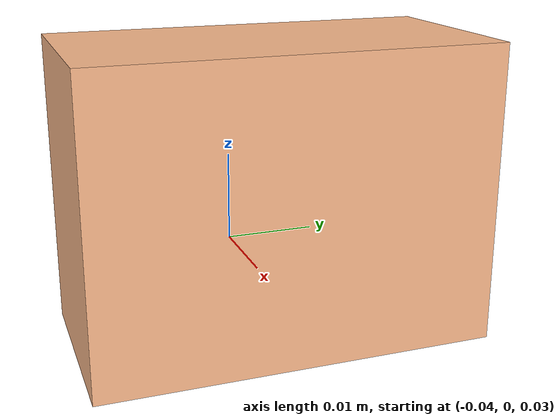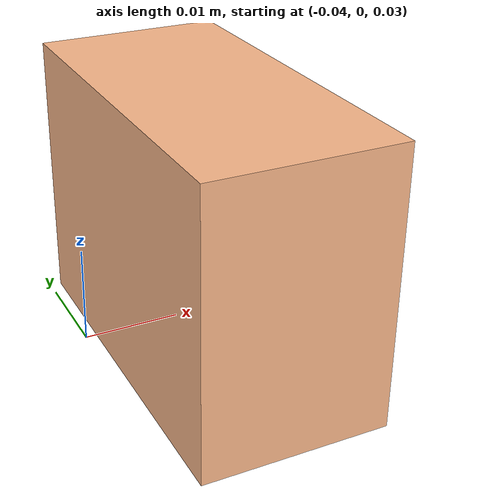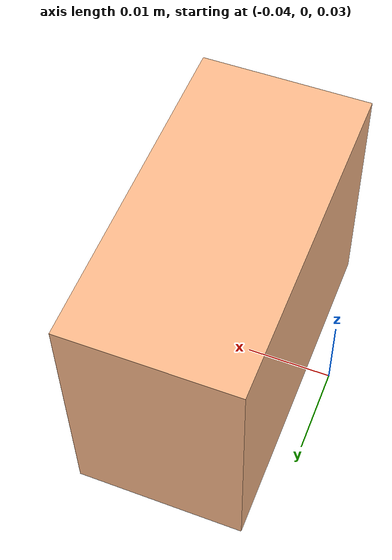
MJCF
<mujoco model="montessori_object_5">
    <compiler angle="radian" meshdir="." autolimits="true" inertiafromgeom="true"/>
    <default>
        <default class="montessori_object_5_collision">
            <geom rgba="0.99 0.73 0.55 1.0"/>
        </default>
    </default>
    <worldbody>
        <body name="montessori_object_5" pos="-0.0265 0 0.04" quat="1 0 0 0">
            <freejoint/>
            <inertial mass="0.008732691407203674" pos="0.0 0.0 0.0" quat="1.0 0.0 0.0 0.0" diaginertia="1.2838365819334285e-06 7.132425139388943e-07 7.132425139388943e-07"/>
			<geom name="MontessoriObject5" type="box" size="0.01 0.02 0.015" class="montessori_object_5_collision"/>
        </body>
    </worldbody>
</mujoco>
